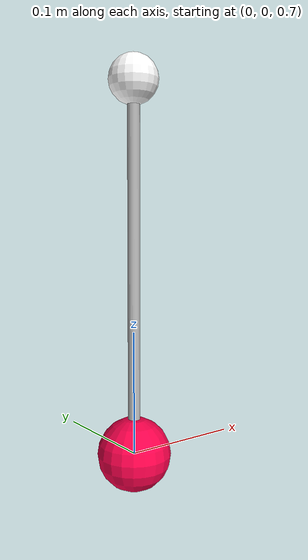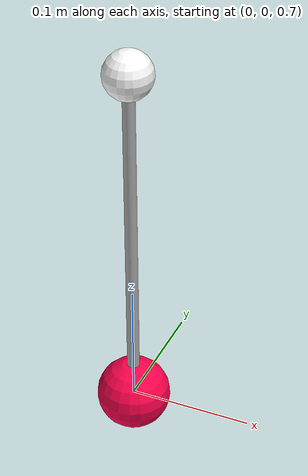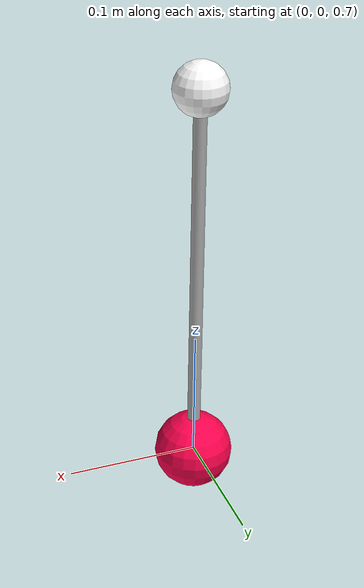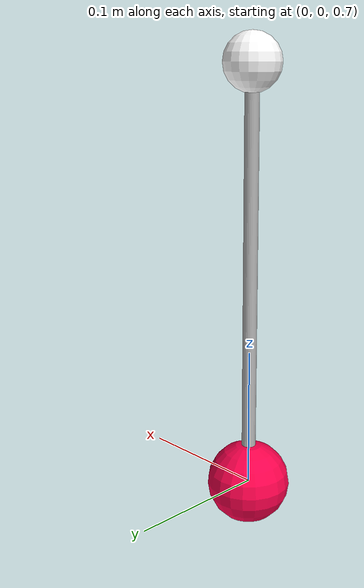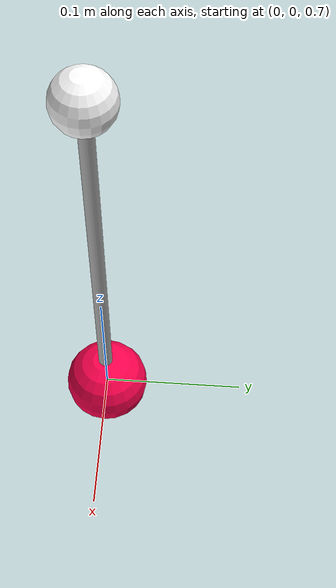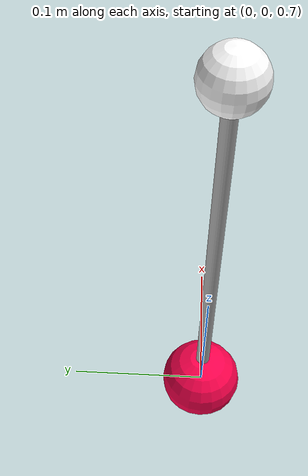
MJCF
<mujoco model="joint_feder_test">
    <compiler angle="degree"/>
    <option gravity="0 0 -9.81" timestep="0.001"/>

    <visual>
        <headlight ambient="0.5 0.5 0.5" diffuse="0.5 0.5 0.5" specular="0 0 0"/>
    </visual>

    <asset>
        <texture name="grid_tex" type="2d" builtin="checker" rgb1=".2 .3 .4" rgb2=".1 .2 .3"
             width="100" height="100" mark="edge" markrgb=".8 .8 .8"/>
        <material name="grid_material" texture="grid_tex" texrepeat="2 2" texuniform="true"/>
    </asset>

    <worldbody>
        <light directional="true" diffuse=".8 .8 .8" specular=".2 .2 .2" pos="0 0 5" dir="0 0 -1"/>
        <geom name="floor" type="plane" pos="0 0 -0.5" size="2 2 0.1" material="grid_material"/>

        <!-- Fester Aufhaengepunkt der Feder -->
        <body name="anchor" pos="0 0 1">
            <geom type="sphere" size="0.02" rgba="1 1 1 1"/>
        </body>

        <body name="mass" pos="0 0 0.7">
            <joint name="slide1" type="slide" axis="0 0 1"
                   springref="0.3" stiffness="1000" damping="1"/>
            <geom type="sphere" size="0.03" mass="1" rgba="1 0 0.3 1"/>

            <!-- Sichtbare "Federstange" zwischen Anker und Masse -->
            <geom type="cylinder" size="0.005" fromto="0 0 0.3 0 0 0" rgba="0.7 0.7 0.7 1" contype="0" conaffinity="0"/>
        </body>
    </worldbody>
</mujoco>
